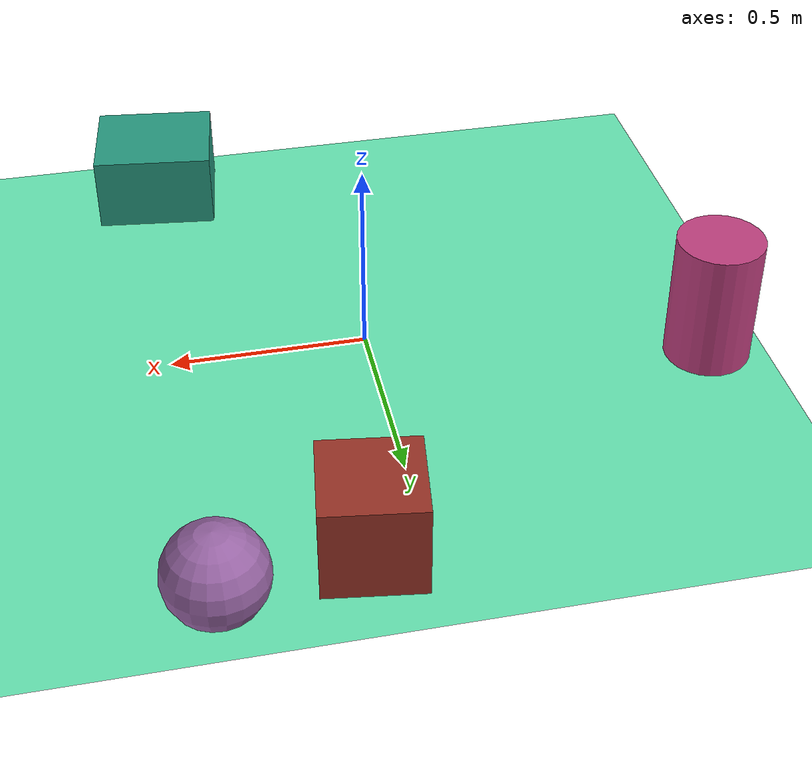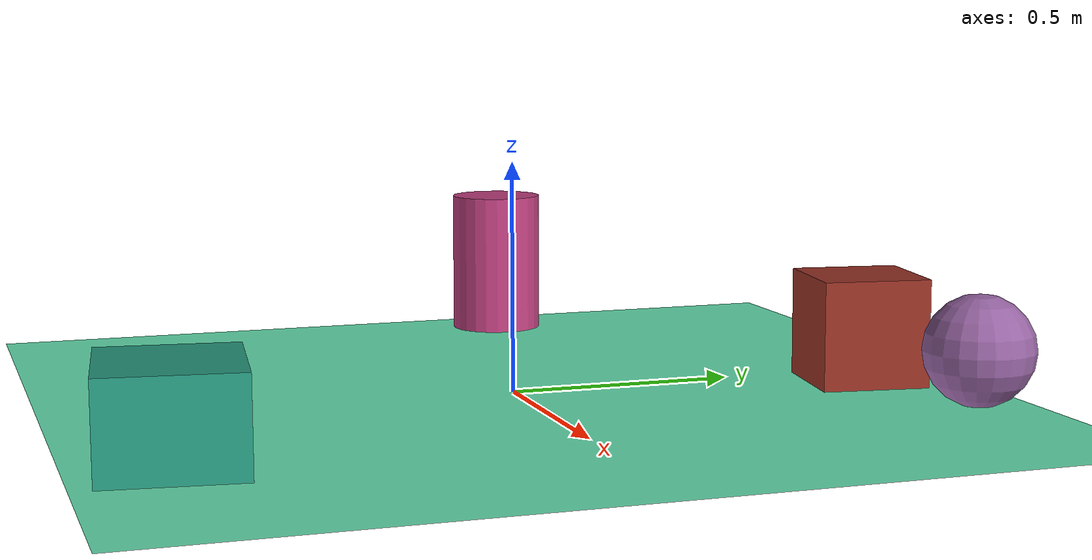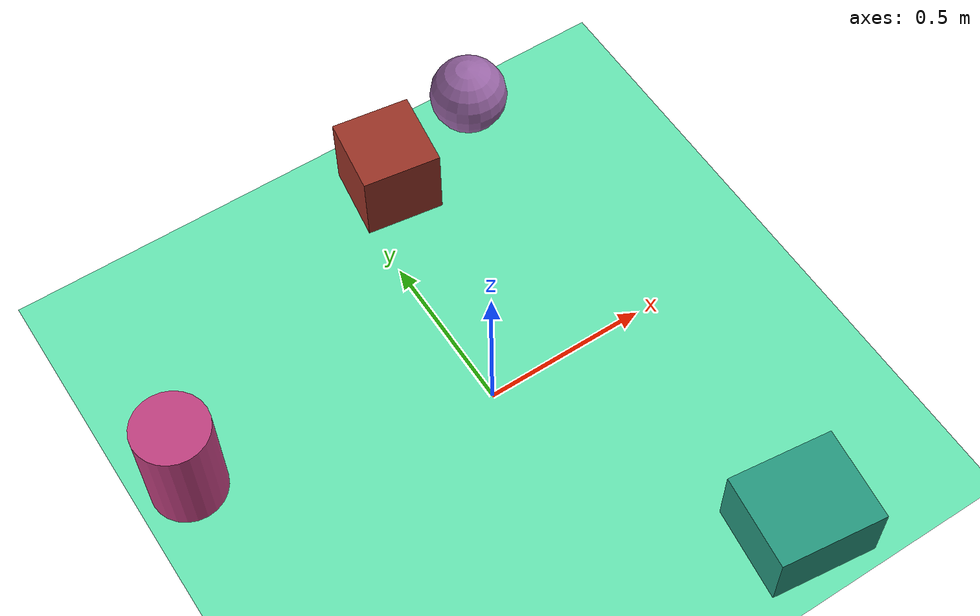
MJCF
<mujoco>
   <asset>
<texture type="skybox" builtin="gradient" rgb1="0.0 1.0 0.5" rgb2="0.5 1.0 0.9" width="256" height="256"/>
<texture name="checker_0" builtin="checker" rgb1="0.8 0.3 0.5" rgb2="0.7 0.2 0.5" width="200" height="200"/>
<texture name="gradient_1" builtin="gradient" rgb1="0.5 0.3 0.2" rgb2="0.7 0.1 0.1" width="200" height="200"/>
<texture name="checker_2" builtin="checker" rgb1="0.1 0.5 0.9" rgb2="0.2 0.7 0.1" width="200" height="200"/>
<texture name="gradient_3" builtin="gradient" rgb1="1.0 0.4 0.9" rgb2="0.2 0.4 0.4" width="200" height="200"/><material name="checker_0_mat" reflectance="0" texrepeat="5 5" texture="checker_0" texuniform="false" />
<material name="gradient_1_mat" reflectance="0" texture="gradient_1" texuniform="true"/>
<material name="checker_2_mat" reflectance="0" texrepeat="9 9" texture="checker_2" texuniform="false" />
<material name="gradient_3_mat" reflectance="0" texture="gradient_3" texuniform="true"/>
   </asset>

   <worldbody>
      <light diffuse=".9 .9 .9" pos="0 0 3" dir="0 0 -1"/>
     <geom type="plane" size="1 1 0.1" rgba="0.4 0.9 0.7 1"/>
<geom type="cylinder" pos="-0.85 0.22 0.17" size="0.11 0.17 0.17" material="checker_0_mat" euler="0 0 0" />
<geom type="box" pos="0.13 0.77 0.12" size="0.12 0.12 0.12" material="gradient_1_mat" euler="0 0 82" />
<geom type="box" pos="0.46 -0.8 0.1" size="0.14 0.16 0.1" material="checker_2_mat" euler="0 0 83" />
<geom type="sphere" pos="0.48 0.87 0.12" size="0.12 0.12 0.12" material="gradient_3_mat" euler="0 0 40" /><camera euler="60 0 180" fovy="60" name="camera1" pos="-0.2 -1.5 1"></camera>   </worldbody>
</mujoco>
